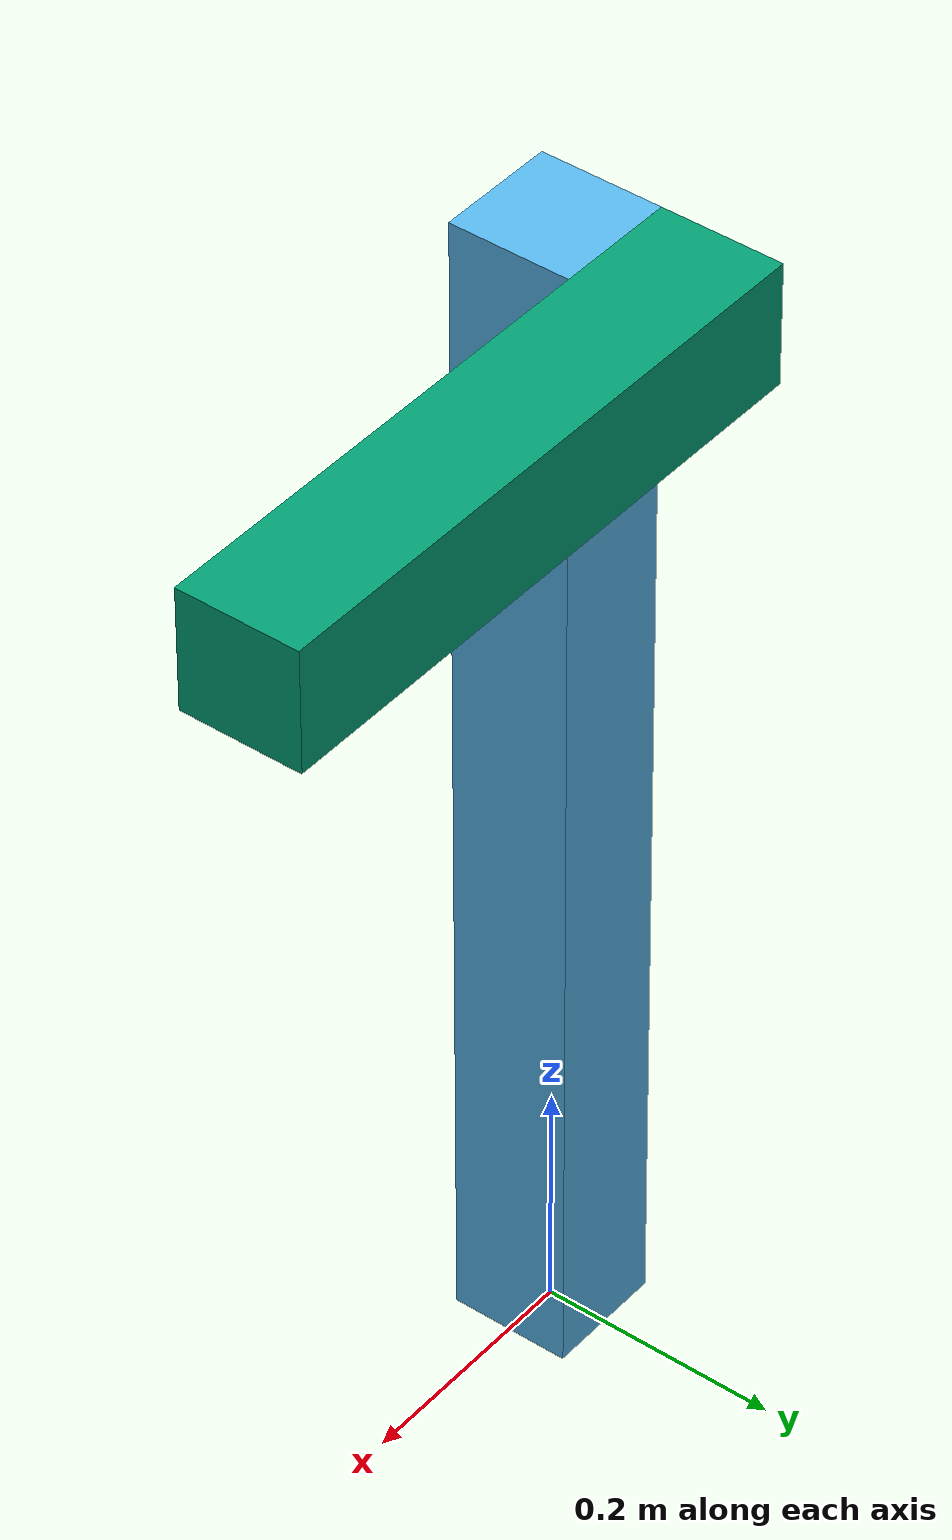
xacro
<?xml version="1.0"?>
<robot xmlns:xacro="http://www.ros.org/wiki/xacro" name="rmrobot">
    <!-- Constants for robot dimensions -->
    <xacro:property name="mass" value="0.5"/> <!-- arbitrary value for mass -->
    <xacro:property name="width" value="0.1"/> <!-- Square dimensions (widthxwidth) of beams -->
    <xacro:property name="height1" value="1"/> <!-- Link 1 -->
    <xacro:property name="height2" value="0.5"/> <!-- Link 2 -->
    <xacro:property name="axel_offset" value="0.05"/> <!-- Space btw top of beam and the each joint -->
    <!-- Used for fixing robot to Gazebo 'base_link' -->
    <link name="world"/>
    <joint name="fixed" type="fixed">
        <parent link="world"/>
        <child link="link1"/>
    </joint>

    <link name="link1">
        <collision>
            <origin xyz="0 0 ${height1/2}" rpy="0 0 0"/>
            <geometry>
                <box size="${width} ${width} ${height1}"/>
            </geometry>
        </collision>
        <visual>
            <origin xyz="0 0 ${height1/2}" rpy="0 0 0"/>
            <geometry>
                <box size="${width} ${width} ${height1}"/>
            </geometry>
        </visual>
        <inertial>
            <origin xyz="0 0 ${height1/2}" rpy="0 0 0"/>
            <mass value="${mass}"/>
            <inertia
                    ixx="${mass / 12.0 * (width*width + height1*height1)}" ixy="0.0" ixz="0.0"
                    iyy="${mass / 12.0 * (height1*height1 + width*width)}" iyz="0.0"
                    izz="${mass / 12.0 * (width*width + width*width)}"/>
        </inertial>
    </link>
    <joint name="joint1" type="revolute">
        <axis xyz="0 1 0"/>
        <origin xyz="0 ${width} ${height1 - axel_offset}" rpy="0 1.57 0"/>
             limit not work while type="continuous"
        <limit effort="5." velocity="1.0" lower="-1e9" upper="1e9"/>
        <dynamics damping="0.01" friction="0.02"/>
        <parent link="link1"/>
        <child link="link2"/>
    </joint>

    <link name="link2">
        <collision>
            <origin xyz="0 0 ${height2/2 - axel_offset}" rpy="0 0 0"/>
            <geometry>
                <box size="${width} ${width} ${height2}"/>
            </geometry>
        </collision>
        <visual>
            <origin xyz="0 0 ${height2/2 - axel_offset}" rpy="0 0 0"/>
            <geometry>
                <box size="${width} ${width} ${height2}"/>
            </geometry>
        </visual>
        <inertial>
            <origin xyz="0 0 ${height2/2 - axel_offset}" rpy="0 0 0"/>
            <mass value="${mass}"/>
            <inertia
                    ixx="${mass / 12.0 * (width*width + height2*height2)}" ixy="0.0" ixz="0.0"
                    iyy="${mass / 12.0 * (height2*height2 + width*width)}" iyz="0.0"
                    izz="${mass / 12.0 * (width*width + width*width)}"/>
        </inertial>
    </link>

    <link name="test_link"/>
    <joint name="joint2" type="revolute">
        <axis xyz="0 1 0"/>
        <origin xyz="0 0 0" rpy="0 1.57 0"/>
        <limit effort="5." velocity="50." lower="-1e9" upper="1e9"/>
        <dynamics damping="0.01" friction="0.02"/>
        <parent link="link2"/>
        <child link="test_link"/>
    </joint>

    <transmission name="tran1">
        <type>transmission_interface/SimpleTransmission</type>
        <joint name="joint1">
            <hardwareInterface>hardware_interface/EffortJointInterface</hardwareInterface>
        </joint>
        <actuator name="motor1">
            <hardwareInterface>hardware_interface/EffortJointInterface</hardwareInterface>
            <mechanicalReduction>1</mechanicalReduction>
        </actuator>
    </transmission>

     <transmission name="tran2">
        <type>transmission_interface/SimpleTransmission</type>
        <joint name="joint2">
            <hardwareInterface>hardware_interface/EffortJointInterface</hardwareInterface>
        </joint>
        <actuator name="motor2">
            <hardwareInterface>hardware_interface/EffortJointInterface</hardwareInterface>
            <mechanicalReduction>-1</mechanicalReduction>
        </actuator>
    </transmission>
    <!-- right_front_wheel_motor -->

    <gazebo>
        <plugin name="gazebo_ros_control" filename="libgazebo_ros_control.so">
            <robotNamespace>/</robotNamespace>
        </plugin>

        <plugin name="adjustment_controller" filename="libadjustment_controller.so">
			<robotNamespace>/</robotNamespace>
		</plugin>
    </gazebo>
</robot>
